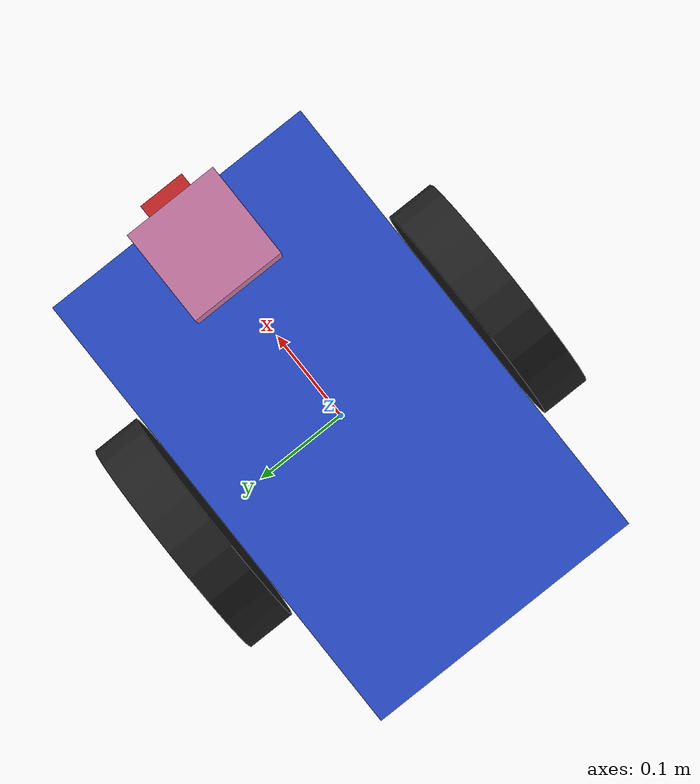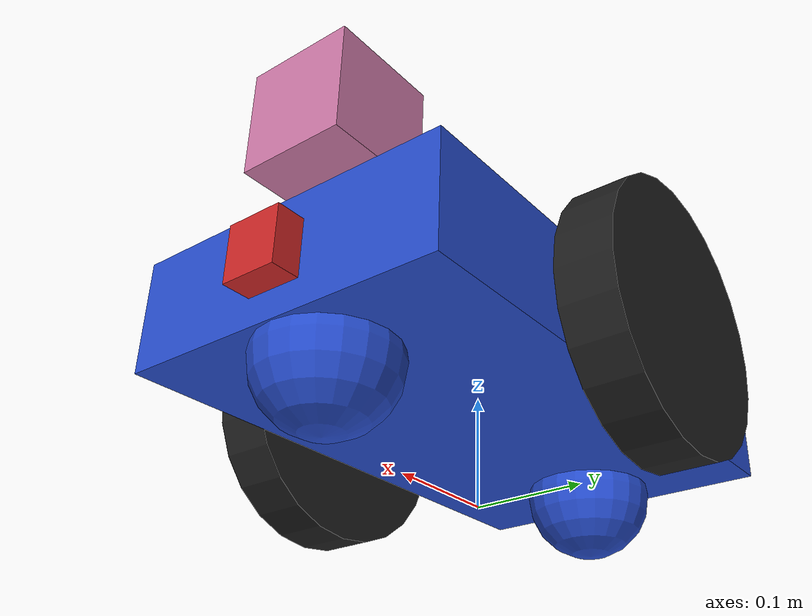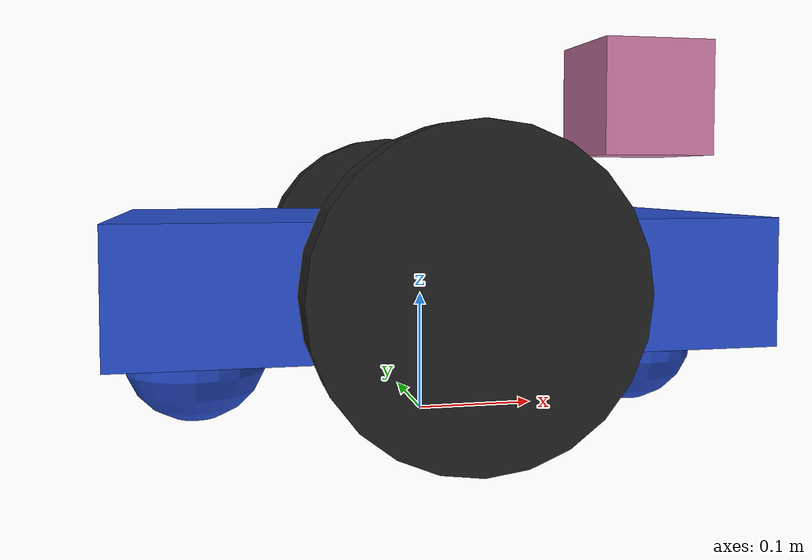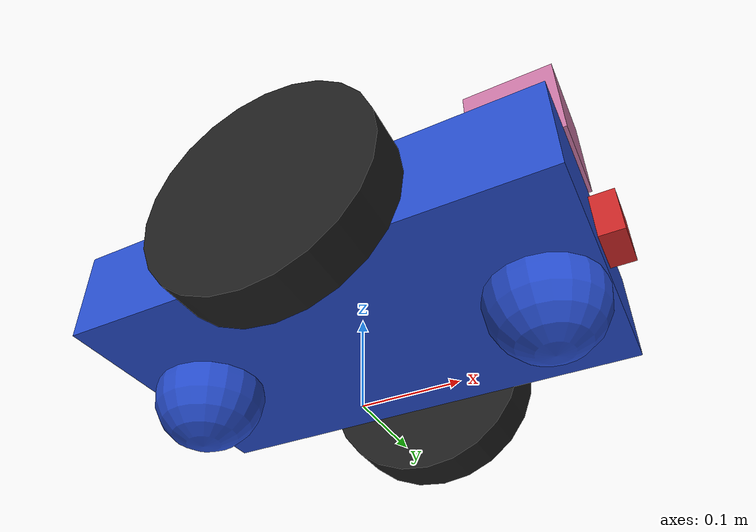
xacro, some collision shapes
<?xml version='1.0'?>

<robot name="my_robot" xmlns:xacro="http://www.ros.org/wiki/xacro">

  <xacro:include filename="$(find my_robot)/urdf/my_robot.gazebo" />

  <!-- Dimensions (changed from the lesson sample: chassis .4x.2x.1, wheel r=0.1) -->
  <xacro:property name="chassis_length" value="0.5"/>
  <xacro:property name="chassis_width"  value="0.3"/>
  <xacro:property name="chassis_height" value="0.1"/>
  <xacro:property name="chassis_mass"   value="15.0"/>

  <xacro:property name="wheel_radius"   value="0.12"/>
  <xacro:property name="wheel_length"   value="0.05"/>
  <xacro:property name="wheel_mass"     value="5.0"/>
  <!-- Wheel centre offset from chassis centre along y; wheelSeparation in my_robot.gazebo = 2x this -->
  <xacro:property name="wheel_offset_y" value="0.18"/>

  <!-- Casters reach exactly to the ground so the chassis sits level on wheels + casters -->
  <xacro:property name="caster_radius"   value="0.06"/>
  <xacro:property name="caster_offset_x" value="0.19"/>

  <!-- Solid-body inertia, so Gazebo's physics stays stable -->
  <xacro:macro name="box_inertia" params="m x y z">
    <inertia ixx="${m*(y*y+z*z)/12}" ixy="0" ixz="0"
             iyy="${m*(x*x+z*z)/12}" iyz="0"
             izz="${m*(x*x+y*y)/12}"/>
  </xacro:macro>

  <xacro:macro name="cylinder_inertia" params="m r h">
    <inertia ixx="${m*(3*r*r+h*h)/12}" ixy="0" ixz="0"
             iyy="${m*(3*r*r+h*h)/12}" iyz="0"
             izz="${m*r*r/2}"/>
  </xacro:macro>

  <link name="robot_footprint"></link>

  <!-- Lift the chassis so its centre is at wheel-axle height -->
  <joint name="robot_footprint_joint" type="fixed">
    <origin xyz="0 0 ${wheel_radius}" rpy="0 0 0" />
    <parent link="robot_footprint"/>
    <child link="chassis" />
  </joint>

  <link name='chassis'>
    <inertial>
      <mass value="${chassis_mass}"/>
      <origin xyz="0 0 0" rpy="0 0 0"/>
      <xacro:box_inertia m="${chassis_mass}" x="${chassis_length}" y="${chassis_width}" z="${chassis_height}"/>
    </inertial>

    <collision name='collision'>
      <origin xyz="0 0 0" rpy="0 0 0"/>
      <geometry>
        <box size="${chassis_length} ${chassis_width} ${chassis_height}"/>
      </geometry>
    </collision>

    <visual name='chassis_visual'>
      <origin xyz="0 0 0" rpy="0 0 0"/>
      <geometry>
        <box size="${chassis_length} ${chassis_width} ${chassis_height}"/>
      </geometry>
    </visual>

    <collision name='back_caster_collision'>
      <origin xyz="${-caster_offset_x} 0 ${caster_radius - wheel_radius}" rpy="0 0 0"/>
      <geometry>
        <sphere radius="${caster_radius - 0.0001}"/>
      </geometry>
    </collision>

    <visual name='back_caster_visual'>
      <origin xyz="${-caster_offset_x} 0 ${caster_radius - wheel_radius}" rpy="0 0 0"/>
      <geometry>
        <sphere radius="${caster_radius}"/>
      </geometry>
    </visual>

    <collision name='front_caster_collision'>
      <origin xyz="${caster_offset_x} 0 ${caster_radius - wheel_radius}" rpy="0 0 0"/>
      <geometry>
        <sphere radius="${caster_radius - 0.0001}"/>
      </geometry>
    </collision>

    <visual name='front_caster_visual'>
      <origin xyz="${caster_offset_x} 0 ${caster_radius - wheel_radius}" rpy="0 0 0"/>
      <geometry>
        <sphere radius="${caster_radius}"/>
      </geometry>
    </visual>
  </link>

  <xacro:macro name="wheel" params="side y_sign">
    <link name="${side}_wheel">
      <inertial>
        <mass value="${wheel_mass}"/>
        <origin xyz="0 0 0" rpy="0 1.5707 1.5707"/>
        <xacro:cylinder_inertia m="${wheel_mass}" r="${wheel_radius}" h="${wheel_length}"/>
      </inertial>

      <collision name="${side}_wheel_collision">
        <origin xyz="0 0 0" rpy="0 1.5707 1.5707"/>
        <geometry>
          <cylinder radius="${wheel_radius}" length="${wheel_length}"/>
        </geometry>
      </collision>

      <visual name="${side}_wheel_visual">
        <origin xyz="0 0 0" rpy="0 1.5707 1.5707"/>
        <geometry>
          <cylinder radius="${wheel_radius}" length="${wheel_length}"/>
        </geometry>
      </visual>
    </link>

    <joint type="continuous" name="${side}_wheel_hinge">
      <origin xyz="0 ${y_sign * wheel_offset_y} 0" rpy="0 0 0"/>
      <child link="${side}_wheel"/>
      <parent link="chassis"/>
      <axis xyz="0 1 0" rpy="0 0 0"/>
      <limit effort="10000" velocity="1000"/>
      <dynamics damping="1.0" friction="1.0"/>
    </joint>
  </xacro:macro>

  <xacro:wheel side="left"  y_sign="1"/>
  <xacro:wheel side="right" y_sign="-1"/>

  <!-- RGB-D camera (simulated Kinect) on the front face of the chassis -->
  <link name="camera_link">
    <inertial>
      <mass value="0.1"/>
      <origin xyz="0 0 0" rpy="0 0 0"/>
      <inertia ixx="1e-6" ixy="0" ixz="0" iyy="1e-6" iyz="0" izz="1e-6"/>
    </inertial>

    <collision name="camera_collision">
      <origin xyz="0 0 0" rpy="0 0 0"/>
      <geometry>
        <box size="0.05 0.05 0.05"/>
      </geometry>
    </collision>

    <visual name="camera_visual">
      <origin xyz="0 0 0" rpy="0 0 0"/>
      <geometry>
        <box size="0.05 0.05 0.05"/>
      </geometry>
    </visual>
  </link>

  <joint name="camera_joint" type="fixed">
    <origin xyz="${chassis_length/2} 0 0" rpy="0 0 0"/>
    <parent link="chassis"/>
    <child link="camera_link"/>
    <axis xyz="0 1 0" rpy="0 0 0"/>
  </joint>

  <!-- Optical frame: z forward, x right, y down, the convention the Kinect plugin publishes images in -->
  <joint name="camera_optical_joint" type="fixed">
    <origin xyz="0 0 0" rpy="-1.5707 0 -1.5707"/>
    <parent link="camera_link"/>
    <child link="camera_link_optical"/>
  </joint>

  <link name="camera_link_optical">
  </link>

  <!-- Hokuyo lidar on top of the chassis. Its beams sit 0.27 m above the ground, clear of the
       0.24 m wheel tops, so the rear of the 270-degree scan does not hit the robot's own wheels. -->
  <link name="hokuyo">
    <inertial>
      <mass value="1e-5"/>
      <origin xyz="0 0 0" rpy="0 0 0"/>
      <inertia ixx="1e-6" ixy="0" ixz="0" iyy="1e-6" iyz="0" izz="1e-6"/>
    </inertial>

    <collision name="hokuyo_collision">
      <origin xyz="0 0 0" rpy="0 0 0"/>
      <geometry>
        <box size="0.1 0.1 0.1"/>
      </geometry>
    </collision>

    <visual name="hokuyo_visual">
      <origin xyz="0 0 0" rpy="0 0 0"/>
      <geometry>
        <mesh filename="package://my_robot/meshes/hokuyo.dae"/>
      </geometry>
    </visual>
  </link>

  <joint name="hokuyo_joint" type="fixed">
    <origin xyz="0.2 0 ${chassis_height + 0.05}" rpy="0 0 0"/>
    <parent link="chassis"/>
    <child link="hokuyo"/>
    <axis xyz="0 1 0" rpy="0 0 0"/>
  </joint>

</robot>
